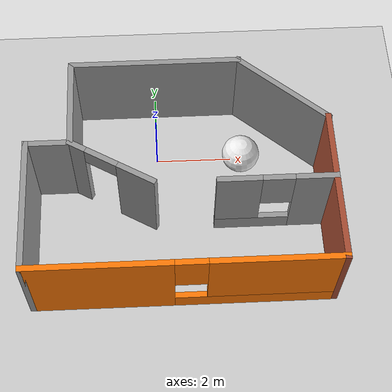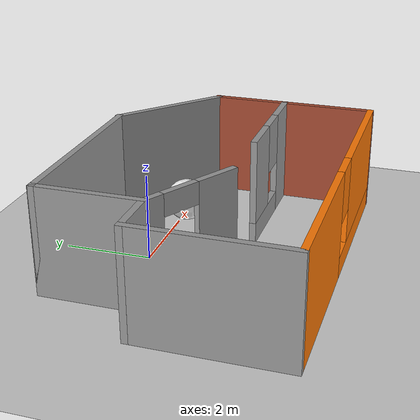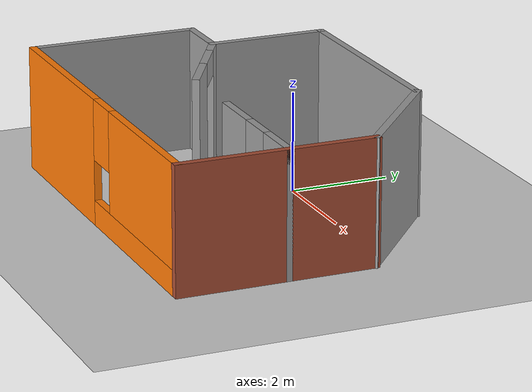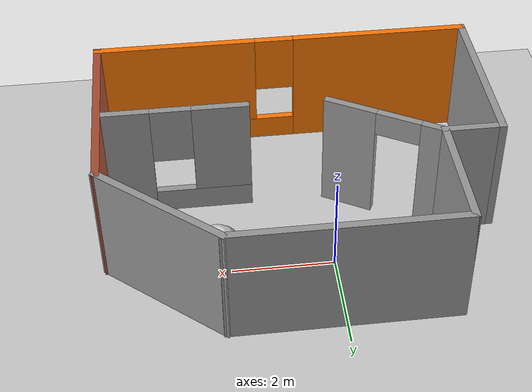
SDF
<sdf version="1.6">
 <world name="default">
  <model name="ground_plane">
   <static>1</static>
   <link name="link">
    <collision name="collision">
     <geometry><plane><normal>0 0 1</normal><size>100 100</size></plane></geometry>
     <surface>
      <contact><collide_bitmask>65535</collide_bitmask></contact>
      <friction><ode><mu>100</mu><mu2>50</mu2></ode></friction>
     </surface>
    </collision>
    <visual name="visual">
     <cast_shadows>0</cast_shadows>
     <geometry><plane><normal>0 0 1</normal><size>100 100</size></plane></geometry>
     <material>
      <script><uri>file://media/materials/scripts/gazebo.material</uri><name>Gazebo/Grey</name></script>
     </material>
    </visual>
   </link>
  </model>
  <model name="my_ball">
   <link name="link_0">
    <inertial>
     <mass>1</mass>
     <inertia><ixx>0.1</ixx><ixy>0</ixy><ixz>0</ixz><iyy>0.1</iyy><iyz>0</iyz><izz>0.1</izz></inertia>
    </inertial>
    <visual name="visual">
     <geometry><sphere><radius>0.5</radius></sphere></geometry>
     <material>
      <lighting>1</lighting>
      <script><uri>file://media/materials/scripts/gazebo.material</uri><name>Gazebo/White</name></script>
      <shader type="pixel"><normal_map>__default__</normal_map></shader>
      <ambient>1 1 1 1</ambient>
      <diffuse>1 1 1 1</diffuse>
      <specular>1 1 1 1</specular>
      <emissive>1 1 1 1</emissive>
     </material>
    </visual>
    <collision name="collision">
     <geometry><sphere><radius>0.5</radius></sphere></geometry>
     <surface>
      <friction>
       <ode><mu>1</mu><mu2>1</mu2><fdir1>0 0 0</fdir1><slip1>0</slip1><slip2>0</slip2></ode>
       <torsional>
        <coefficient>1</coefficient>
        <patch_radius>0</patch_radius>
        <surface_radius>0</surface_radius>
        <use_patch_radius>1</use_patch_radius>
        <ode><slip>0</slip></ode>
       </torsional>
      </friction>
      <bounce><restitution_coefficient>0</restitution_coefficient><threshold>1e+06</threshold></bounce>
      <contact>
       <collide_without_contact>0</collide_without_contact>
       <collide_without_contact_bitmask>1</collide_without_contact_bitmask>
       <collide_bitmask>1</collide_bitmask>
       <ode>
        <soft_cfm>0</soft_cfm>
        <soft_erp>0.2</soft_erp>
        <kp>1e+13</kp>
        <kd>1</kd>
        <max_vel>0.01</max_vel>
        <min_depth>0</min_depth>
       </ode>
       <bullet>
        <split_impulse>1</split_impulse>
        <split_impulse_penetration_threshold>-0.01</split_impulse_penetration_threshold>
        <soft_cfm>0</soft_cfm>
        <soft_erp>0.2</soft_erp>
        <kp>1e+13</kp>
        <kd>1</kd>
       </bullet>
      </contact>
     </surface>
    </collision>
   </link>
   <static>0</static>
   <pose>2.25165 -0.125081 0.5 0 -0 0</pose>
  </model>
  <model name="building">
   <pose>0.565384 -1.28462 0 0 -0 0</pose>
   <link name="Wall_16">
    <collision name="Wall_16_Collision">
     <geometry><box><size>3.5 0.15 2.5</size></box></geometry>
     <pose>0 0 1.25 0 -0 0</pose>
    </collision>
    <visual name="Wall_16_Visual">
     <pose>0 0 1.25 0 -0 0</pose>
     <geometry><box><size>3.5 0.15 2.5</size></box></geometry>
     <material>
      <script><uri>file://media/materials/scripts/gazebo.material</uri><name>Gazebo/Grey</name></script>
      <ambient>1 1 1 1</ambient>
     </material>
     <meta><layer>0</layer></meta>
    </visual>
    <pose>-3.81538 -1.19038 0 0 0 -1.5708</pose>
   </link>
   <link name="Wall_17">
    <pose>-0.015384 -2.86538 0 0 -0 0</pose>
    <visual name="Wall_17_Visual_0">
     <pose>-2.0525 0 1.25 0 -0 0</pose>
     <geometry><box><size>3.645 0.15 2.5</size></box></geometry>
     <material>
      <script><uri>file://media/materials/scripts/gazebo.material</uri><name>Gazebo/Grey</name></script>
      <ambient>0.996078 0.47451 0.0196078 1</ambient>
     </material>
     <meta><layer>0</layer></meta>
    </visual>
    <collision name="Wall_17_Collision_0">
     <geometry><box><size>3.645 0.15 2.5</size></box></geometry>
     <pose>-2.0525 0 1.25 0 -0 0</pose>
    </collision>
    <visual name="Wall_17_Visual_1">
     <pose>1.8225 0 0.25 0 -0 0</pose>
     <geometry><box><size>4.105 0.15 0.5</size></box></geometry>
     <material>
      <script><uri>file://media/materials/scripts/gazebo.material</uri><name>Gazebo/Grey</name></script>
      <ambient>0.996078 0.47451 0.0196078 1</ambient>
     </material>
     <meta><layer>0</layer></meta>
    </visual>
    <collision name="Wall_17_Collision_1">
     <geometry><box><size>4.105 0.15 0.5</size></box></geometry>
     <pose>1.8225 0 0.25 0 -0 0</pose>
    </collision>
    <visual name="Wall_17_Visual_2">
     <pose>2.2225 0 1.5 0 -0 0</pose>
     <geometry><box><size>3.305 0.15 2</size></box></geometry>
     <material>
      <script><uri>file://media/materials/scripts/gazebo.material</uri><name>Gazebo/Grey</name></script>
      <ambient>0.996078 0.47451 0.0196078 1</ambient>
     </material>
     <meta><layer>0</layer></meta>
    </visual>
    <collision name="Wall_17_Collision_2">
     <geometry><box><size>3.305 0.15 2</size></box></geometry>
     <pose>2.2225 0 1.5 0 -0 0</pose>
    </collision>
    <visual name="Wall_17_Visual_3">
     <pose>0.17 0 1.9 0 -0 0</pose>
     <geometry><box><size>0.8 0.15 1.2</size></box></geometry>
     <material>
      <script><uri>file://media/materials/scripts/gazebo.material</uri><name>Gazebo/Grey</name></script>
      <ambient>0.996078 0.47451 0.0196078 1</ambient>
     </material>
     <meta><layer>0</layer></meta>
    </visual>
    <collision name="Wall_17_Collision_3">
     <geometry><box><size>0.8 0.15 1.2</size></box></geometry>
     <pose>0.17 0 1.9 0 -0 0</pose>
    </collision>
   </link>
   <link name="Wall_18">
    <collision name="Wall_18_Collision">
     <geometry><box><size>4 0.15 2.5</size></box></geometry>
     <pose>0 0 1.25 0 -0 0</pose>
    </collision>
    <visual name="Wall_18_Visual">
     <pose>0 0 1.25 0 -0 0</pose>
     <geometry><box><size>4 0.15 2.5</size></box></geometry>
     <material>
      <script><uri>file://media/materials/scripts/gazebo.material</uri><name>Gazebo/Bricks</name></script>
      <ambient>1 0.764706 0.305882 1</ambient>
     </material>
     <meta><layer>0</layer></meta>
    </visual>
    <pose>3.78462 -0.940384 0 0 -0 1.5708</pose>
   </link>
   <link name="Wall_20">
    <collision name="Wall_20_Collision">
     <geometry><box><size>1.25 0.15 2.5</size></box></geometry>
     <pose>0 0 1.25 0 -0 0</pose>
    </collision>
    <visual name="Wall_20_Visual">
     <pose>0 0 1.25 0 -0 0</pose>
     <geometry><box><size>1.25 0.15 2.5</size></box></geometry>
     <material>
      <script><uri>file://media/materials/scripts/gazebo.material</uri><name>Gazebo/Grey</name></script>
      <ambient>1 1 1 1</ambient>
     </material>
     <meta><layer>0</layer></meta>
    </visual>
    <pose>-3.26538 0.484616 0 0 -0 0</pose>
   </link>
   <link name="Wall_21">
    <collision name="Wall_21_Collision">
     <geometry><box><size>2.5 0.15 2.5</size></box></geometry>
     <pose>0 0 1.25 0 -0 0</pose>
    </collision>
    <visual name="Wall_21_Visual">
     <pose>0 0 1.25 0 -0 0</pose>
     <geometry><box><size>2.5 0.15 2.5</size></box></geometry>
     <material>
      <script><uri>file://media/materials/scripts/gazebo.material</uri><name>Gazebo/Grey</name></script>
      <ambient>1 1 1 1</ambient>
     </material>
     <meta><layer>0</layer></meta>
    </visual>
    <pose>-2.71538 1.65962 0 0 -0 1.5708</pose>
   </link>
   <link name="Wall_22">
    <collision name="Wall_22_Collision">
     <geometry><box><size>4.5 0.15 2.5</size></box></geometry>
     <pose>0 0 1.25 0 -0 0</pose>
    </collision>
    <visual name="Wall_22_Visual">
     <pose>0 0 1.25 0 -0 0</pose>
     <geometry><box><size>4.5 0.15 2.5</size></box></geometry>
     <material>
      <script><uri>file://media/materials/scripts/gazebo.material</uri><name>Gazebo/Grey</name></script>
      <ambient>1 1 1 1</ambient>
     </material>
     <meta><layer>0</layer></meta>
    </visual>
    <pose>-0.540384 2.83462 0 0 -0 0</pose>
   </link>
   <link name="Wall_23">
    <collision name="Wall_23_Collision">
     <geometry><box><size>2.98637 0.15 2.5</size></box></geometry>
     <pose>0 0 1.25 0 -0 0</pose>
    </collision>
    <visual name="Wall_23_Visual">
     <pose>0 0 1.25 0 -0 0</pose>
     <geometry><box><size>2.98637 0.15 2.5</size></box></geometry>
     <material>
      <script><uri>file://media/materials/scripts/gazebo.material</uri><name>Gazebo/Grey</name></script>
      <ambient>1 1 1 1</ambient>
     </material>
     <meta><layer>0</layer></meta>
    </visual>
    <pose>2.70962 1.90962 0 0 0 -0.710538</pose>
   </link>
   <link name="Wall_25">
    <pose>-1.69781 -0.102884 0 0 0 -0.523599</pose>
    <visual name="Wall_25_Visual_0">
     <pose>-0.985731 0 1.25 0 -0 0</pose>
     <geometry><box><size>0.528538 0.15 2.5</size></box></geometry>
     <material>
      <script><uri>file://media/materials/scripts/gazebo.material</uri><name>Gazebo/Grey</name></script>
      <ambient>1 1 1 1</ambient>
     </material>
     <meta><layer>0</layer></meta>
    </visual>
    <collision name="Wall_25_Collision_0">
     <geometry><box><size>0.528538 0.15 2.5</size></box></geometry>
     <pose>-0.985731 0 1.25 0 -0 0</pose>
    </collision>
    <visual name="Wall_25_Visual_1">
     <pose>0.714269 0 1.25 0 -0 0</pose>
     <geometry><box><size>1.07146 0.15 2.5</size></box></geometry>
     <material>
      <script><uri>file://media/materials/scripts/gazebo.material</uri><name>Gazebo/Grey</name></script>
      <ambient>1 1 1 1</ambient>
     </material>
     <meta><layer>0</layer></meta>
    </visual>
    <collision name="Wall_25_Collision_1">
     <geometry><box><size>1.07146 0.15 2.5</size></box></geometry>
     <pose>0.714269 0 1.25 0 -0 0</pose>
    </collision>
    <visual name="Wall_25_Visual_2">
     <pose>-0.271462 0 2.25 0 -0 0</pose>
     <geometry><box><size>0.9 0.15 0.5</size></box></geometry>
     <material>
      <script><uri>file://media/materials/scripts/gazebo.material</uri><name>Gazebo/Grey</name></script>
      <ambient>1 1 1 1</ambient>
     </material>
     <meta><layer>0</layer></meta>
    </visual>
    <collision name="Wall_25_Collision_2">
     <geometry><box><size>0.9 0.15 0.5</size></box></geometry>
     <pose>-0.271462 0 2.25 0 -0 0</pose>
    </collision>
   </link>
   <link name="Wall_29">
    <pose>2.35962 -0.725384 0 0 -0 3.14159</pose>
    <visual name="Wall_29_Visual_0">
     <pose>-0.9625 0 1.25 0 -0 0</pose>
     <geometry><box><size>1.075 0.15 2.5</size></box></geometry>
     <material>
      <script><uri>file://media/materials/scripts/gazebo.material</uri><name>Gazebo/Grey</name></script>
      <ambient>1 1 1 1</ambient>
     </material>
     <meta><layer>0</layer></meta>
    </visual>
    <collision name="Wall_29_Collision_0">
     <geometry><box><size>1.075 0.15 2.5</size></box></geometry>
     <pose>-0.9625 0 1.25 0 -0 0</pose>
    </collision>
    <visual name="Wall_29_Visual_1">
     <pose>0.5375 0 0.25 0 -0 0</pose>
     <geometry><box><size>1.925 0.15 0.5</size></box></geometry>
     <material>
      <script><uri>file://media/materials/scripts/gazebo.material</uri><name>Gazebo/Grey</name></script>
      <ambient>1 1 1 1</ambient>
     </material>
     <meta><layer>0</layer></meta>
    </visual>
    <collision name="Wall_29_Collision_1">
     <geometry><box><size>1.925 0.15 0.5</size></box></geometry>
     <pose>0.5375 0 0.25 0 -0 0</pose>
    </collision>
    <visual name="Wall_29_Visual_2">
     <pose>0.9375 0 1.5 0 -0 0</pose>
     <geometry><box><size>1.125 0.15 2</size></box></geometry>
     <material>
      <script><uri>file://media/materials/scripts/gazebo.material</uri><name>Gazebo/Grey</name></script>
      <ambient>1 1 1 1</ambient>
     </material>
     <meta><layer>0</layer></meta>
    </visual>
    <collision name="Wall_29_Collision_2">
     <geometry><box><size>1.125 0.15 2</size></box></geometry>
     <pose>0.9375 0 1.5 0 -0 0</pose>
    </collision>
    <visual name="Wall_29_Visual_3">
     <pose>-0.025 0 1.9 0 -0 0</pose>
     <geometry><box><size>0.8 0.15 1.2</size></box></geometry>
     <material>
      <script><uri>file://media/materials/scripts/gazebo.material</uri><name>Gazebo/Grey</name></script>
      <ambient>1 1 1 1</ambient>
     </material>
     <meta><layer>0</layer></meta>
    </visual>
    <collision name="Wall_29_Collision_3">
     <geometry><box><size>0.8 0.15 1.2</size></box></geometry>
     <pose>-0.025 0 1.9 0 -0 0</pose>
    </collision>
   </link>
   <static>1</static>
  </model>
  <light name="sun" type="directional">
   <pose>0 0 10 0 -0 0</pose>
   <diffuse>0.8 0.8 0.8 1</diffuse>
   <specular>0.2 0.2 0.2 1</specular>
   <attenuation>
    <range>1000</range>
    <constant>0.9</constant>
    <linear>0.01</linear>
    <quadratic>0.001</quadratic>
   </attenuation>
   <direction>-0.5 0.1 -0.9</direction>
  </light>
  <gravity>0 0 -9.8</gravity>
  <magnetic_field>6e-06 2.3e-05 -4.2e-05</magnetic_field>
  <atmosphere type="adiabatic"/>
  <physics name="default_physics" default="0" type="ode">
   <max_step_size>0.001</max_step_size>
   <real_time_factor>1</real_time_factor>
   <real_time_update_rate>1000</real_time_update_rate>
  </physics>
  <scene><ambient>0.4 0.4 0.4 1</ambient><background>0.7 0.7 0.7 1</background><shadows>1</shadows></scene>
  <spherical_coordinates>
   <surface_model>EARTH_WGS84</surface_model>
   <latitude_deg>0</latitude_deg>
   <longitude_deg>0</longitude_deg>
   <elevation>0</elevation>
   <heading_deg>0</heading_deg>
  </spherical_coordinates>
  <model name="my_ball">
   <link name="link_0">
    <inertial>
     <mass>1</mass>
     <inertia><ixx>0.1</ixx><ixy>0</ixy><ixz>0</ixz><iyy>0.1</iyy><iyz>0</iyz><izz>0.1</izz></inertia>
    </inertial>
    <visual name="visual">
     <geometry><sphere><radius>0.5</radius></sphere></geometry>
     <material>
      <lighting>1</lighting>
      <script><uri>file://media/materials/scripts/gazebo.material</uri><name>Gazebo/Grey</name></script>
      <shader type="pixel"><normal_map>__default__</normal_map></shader>
      <ambient>1 1 1 1</ambient>
      <diffuse>1 1 1 1</diffuse>
      <specular>1 1 1 1</specular>
      <emissive>1 1 1 1</emissive>
     </material>
    </visual>
    <collision name="collision">
     <geometry><sphere><radius>0.5</radius></sphere></geometry>
     <surface>
      <friction>
       <ode><mu>1</mu><mu2>1</mu2><fdir1>0 0 0</fdir1><slip1>0</slip1><slip2>0</slip2></ode>
       <torsional>
        <coefficient>1</coefficient>
        <patch_radius>0</patch_radius>
        <surface_radius>0</surface_radius>
        <use_patch_radius>1</use_patch_radius>
        <ode><slip>0</slip></ode>
       </torsional>
      </friction>
      <bounce><restitution_coefficient>0</restitution_coefficient><threshold>1e+06</threshold></bounce>
      <contact>
       <collide_without_contact>0</collide_without_contact>
       <collide_without_contact_bitmask>1</collide_without_contact_bitmask>
       <collide_bitmask>1</collide_bitmask>
       <ode>
        <soft_cfm>0</soft_cfm>
        <soft_erp>0.2</soft_erp>
        <kp>1e+13</kp>
        <kd>1</kd>
        <max_vel>0.01</max_vel>
        <min_depth>0</min_depth>
       </ode>
       <bullet>
        <split_impulse>1</split_impulse>
        <split_impulse_penetration_threshold>-0.01</split_impulse_penetration_threshold>
        <soft_cfm>0</soft_cfm>
        <soft_erp>0.2</soft_erp>
        <kp>1e+13</kp>
        <kd>1</kd>
       </bullet>
      </contact>
     </surface>
    </collision>
   </link>
   <static>0</static>
   <pose>2.25165 -0.125081 0.5 0 -0 0</pose>
  </model>
 </world>
</sdf>
